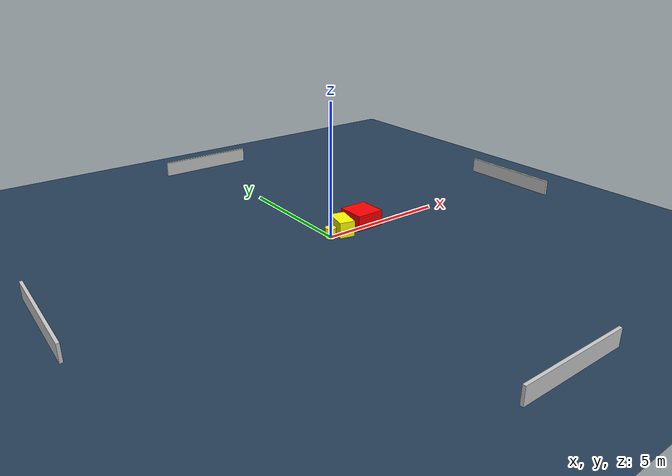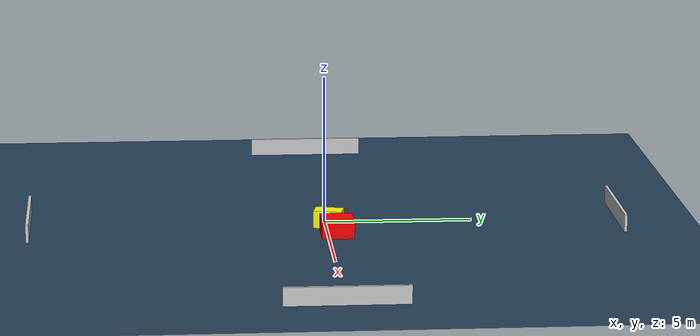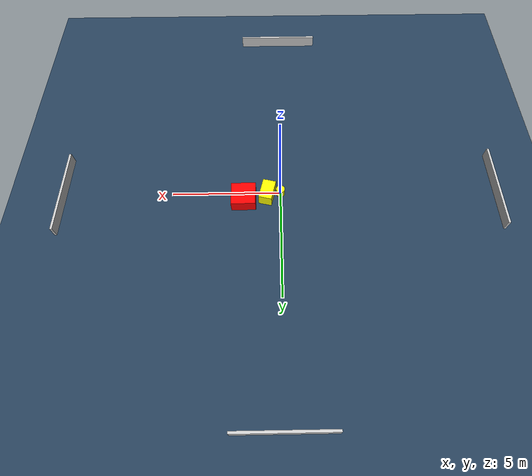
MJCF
<?xml version="1.0" ?>
<mujoco model="generated_environment">
  <option timestep="0.01" integrator="RK4" cone="elliptic"/>
  <default>
    <geom density="1"/>
  </default>
  <asset>
    <texture builtin="gradient" height="3072" name="skybox" rgb1="0.3 0.5 0.7" rgb2="0 0 0" type="skybox" width="512"/>
    <texture builtin="checker" height="300" name="groundplane" rgb1="0.2 0.3 0.4" rgb2="0.1 0.2 0.3" type="2d" width="300"/>
    <material name="groundplane" reflectance="0.2" texrepeat="5 5" texture="groundplane"/>
  </asset>
  <worldbody>
    <light dir="0 0 -1" directional="true" pos="0 0 1.5"/>
    <geom condim="3" friction="0.5 0.005 0.001" material="groundplane" name="floor" pos="0 0 0" size="0 0 0.05" type="plane"/>
    <body name="walls">
      <geom name="wall_1" condim="4" pos="-10.0 0.0 0.3" rgba="0.800000011920929 0.800000011920929 0.800000011920929 1.0" size="0.05 2.0 0.3" type="box"/>
      <geom name="wall_2" condim="4" pos="10.0 0.0 0.3" rgba="0.800000011920929 0.800000011920929 0.800000011920929 1.0" size="0.05 2.0 0.3" type="box"/>
      <geom name="wall_3" condim="4" pos="0.0 -10.0 0.3" rgba="0.800000011920929 0.800000011920929 0.800000011920929 1.0" size="2.0 0.05 0.3" type="box"/>
      <geom name="wall_4" condim="4" pos="0.0 10.0 0.3" rgba="0.800000011920929 0.800000011920929 0.800000011920929 1.0" size="2.0 0.05 0.3" type="box"/>
    </body>
    <body name="robot">
      <joint name="joint_x" type="slide" pos="0 0 0" axis="1 0 0"/>
      <joint name="joint_y" type="slide" pos="0 0 0" axis="0 1 0"/>
      <geom name="robot" type="cylinder" pos="0.0 0.0 0.2" size="0.2 0.2 0.0" mass="5.0" friction="1.0 0.005 0.0001" condim="4" rgba="1.0 1.0 0.0 1.0"/>
    </body>
    <body name="obstacle_1_movable">
      <geom name="obstacle_1_movable" condim="4" pos="0.6054928211473036 0.10541630053723584 0.3" euler="0 0 256.7624706866053" friction="0.0 0.005 0.001" rgba="1.0 1.0 0.0 1.0" size="0.47717635114132956 0.29973546067382256 0.3" type="box" mass="0.1"/>
      <joint type="free"/>
    </body>
    <body name="obstacle_2_static">
      <geom name="obstacle_2_static" condim="4" pos="1.6972182657003085 0.3109492409354503 0.3" euler="0 0 0.17117823461111126" friction="0.0 0.005 0.001" rgba="1.0 0.0 0.0 1.0" size="0.5536315934247388 0.5449862117288262 0.3" type="box"/>
    </body>
  </worldbody>
  <actuator>
    <motor name="actuator_x" joint="joint_x" gear="1" ctrlrange="-1 1"/>
    <motor name="actuator_y" joint="joint_y" gear="1" ctrlrange="-1 1"/>
  </actuator>
</mujoco>
